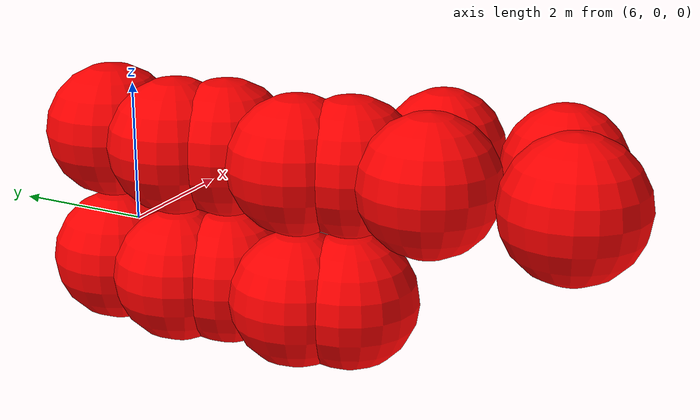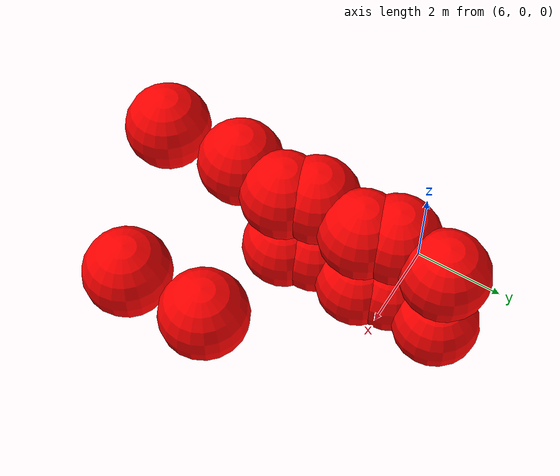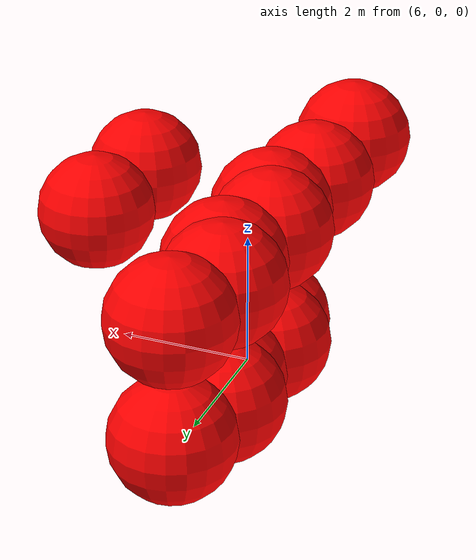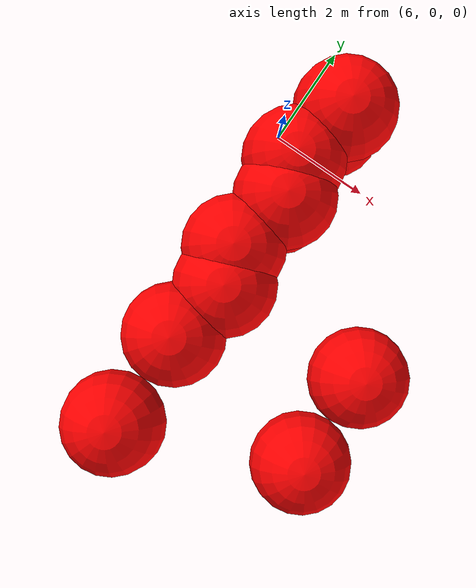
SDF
<sdf version="1.8">
 <world name="3d_world">
  <model name="obstacle_1" canonical_link="obstacle">
   <static>true</static>
   <pose relative_to="world">6.80 -3.04 -1.00 0 0 0</pose>
   <link name="obstacle">
    <pose relative_to="__model__">0.0 0 0.0 0 0 0</pose>
    <visual name="visual">
     <geometry><sphere><radius>1.00</radius></sphere></geometry>
     <material>
      <ambient>1.0 0.0 0.0 1</ambient>
      <diffuse>1.0 0.0 0.0 1</diffuse>
      <specular>1.0 0.0 0.0 1</specular>
     </material>
    </visual>
    <collision name="collision"><geometry><sphere><radius>1.00</radius></sphere></geometry></collision>
    <enable_gravity>false</enable_gravity>
   </link>
   <plugin filename="ignition-gazebo-velocity-control-system" name="ignition::gazebo::systems::VelocityControl">
    <initial_linear>0.00 0.00 0.00</initial_linear>
    <initial_angular>0 0 0</initial_angular>
   </plugin>
   <plugin filename="ignition-gazebo-odometry-publisher-system" name="ignition::gazebo::systems::OdometryPublisher">
    <dimensions>3</dimensions>
   </plugin>
  </model>
  <model name="obstacle_2" canonical_link="obstacle">
   <static>true</static>
   <pose relative_to="world">6.80 -1.04 -1.00 0 0 0</pose>
   <link name="obstacle">
    <pose relative_to="__model__">0.0 0 0.0 0 0 0</pose>
    <visual name="visual">
     <geometry><sphere><radius>1.00</radius></sphere></geometry>
     <material>
      <ambient>1.0 0.0 0.0 1</ambient>
      <diffuse>1.0 0.0 0.0 1</diffuse>
      <specular>1.0 0.0 0.0 1</specular>
     </material>
    </visual>
    <collision name="collision"><geometry><sphere><radius>1.00</radius></sphere></geometry></collision>
    <enable_gravity>false</enable_gravity>
   </link>
   <plugin filename="ignition-gazebo-velocity-control-system" name="ignition::gazebo::systems::VelocityControl">
    <initial_linear>0.00 0.00 0.00</initial_linear>
    <initial_angular>0 0 0</initial_angular>
   </plugin>
   <plugin filename="ignition-gazebo-odometry-publisher-system" name="ignition::gazebo::systems::OdometryPublisher">
    <dimensions>3</dimensions>
   </plugin>
  </model>
  <model name="obstacle_3" canonical_link="obstacle">
   <static>true</static>
   <pose relative_to="world">6.80 0.96 -1.00 0 0 0</pose>
   <link name="obstacle">
    <pose relative_to="__model__">0.0 0 0.0 0 0 0</pose>
    <visual name="visual">
     <geometry><sphere><radius>1.00</radius></sphere></geometry>
     <material>
      <ambient>1.0 0.0 0.0 1</ambient>
      <diffuse>1.0 0.0 0.0 1</diffuse>
      <specular>1.0 0.0 0.0 1</specular>
     </material>
    </visual>
    <collision name="collision"><geometry><sphere><radius>1.00</radius></sphere></geometry></collision>
    <enable_gravity>false</enable_gravity>
   </link>
   <plugin filename="ignition-gazebo-velocity-control-system" name="ignition::gazebo::systems::VelocityControl">
    <initial_linear>0.00 0.00 0.00</initial_linear>
    <initial_angular>0 0 0</initial_angular>
   </plugin>
   <plugin filename="ignition-gazebo-odometry-publisher-system" name="ignition::gazebo::systems::OdometryPublisher">
    <dimensions>3</dimensions>
   </plugin>
  </model>
  <model name="obstacle_4" canonical_link="obstacle">
   <static>true</static>
   <pose relative_to="world">6.80 -3.04 1.00 0 0 0</pose>
   <link name="obstacle">
    <pose relative_to="__model__">0.0 0 0.0 0 0 0</pose>
    <visual name="visual">
     <geometry><sphere><radius>1.00</radius></sphere></geometry>
     <material>
      <ambient>1.0 0.0 0.0 1</ambient>
      <diffuse>1.0 0.0 0.0 1</diffuse>
      <specular>1.0 0.0 0.0 1</specular>
     </material>
    </visual>
    <collision name="collision"><geometry><sphere><radius>1.00</radius></sphere></geometry></collision>
    <enable_gravity>false</enable_gravity>
   </link>
   <plugin filename="ignition-gazebo-velocity-control-system" name="ignition::gazebo::systems::VelocityControl">
    <initial_linear>0.00 0.00 0.00</initial_linear>
    <initial_angular>0 0 0</initial_angular>
   </plugin>
   <plugin filename="ignition-gazebo-odometry-publisher-system" name="ignition::gazebo::systems::OdometryPublisher">
    <dimensions>3</dimensions>
   </plugin>
  </model>
  <model name="obstacle_5" canonical_link="obstacle">
   <static>true</static>
   <pose relative_to="world">6.80 -1.04 1.00 0 0 0</pose>
   <link name="obstacle">
    <pose relative_to="__model__">0.0 0 0.0 0 0 0</pose>
    <visual name="visual">
     <geometry><sphere><radius>1.00</radius></sphere></geometry>
     <material>
      <ambient>1.0 0.0 0.0 1</ambient>
      <diffuse>1.0 0.0 0.0 1</diffuse>
      <specular>1.0 0.0 0.0 1</specular>
     </material>
    </visual>
    <collision name="collision"><geometry><sphere><radius>1.00</radius></sphere></geometry></collision>
    <enable_gravity>false</enable_gravity>
   </link>
   <plugin filename="ignition-gazebo-velocity-control-system" name="ignition::gazebo::systems::VelocityControl">
    <initial_linear>0.00 0.00 0.00</initial_linear>
    <initial_angular>0 0 0</initial_angular>
   </plugin>
   <plugin filename="ignition-gazebo-odometry-publisher-system" name="ignition::gazebo::systems::OdometryPublisher">
    <dimensions>3</dimensions>
   </plugin>
  </model>
  <model name="obstacle_6" canonical_link="obstacle">
   <static>true</static>
   <pose relative_to="world">6.80 0.96 1.00 0 0 0</pose>
   <link name="obstacle">
    <pose relative_to="__model__">0.0 0 0.0 0 0 0</pose>
    <visual name="visual">
     <geometry><sphere><radius>1.00</radius></sphere></geometry>
     <material>
      <ambient>1.0 0.0 0.0 1</ambient>
      <diffuse>1.0 0.0 0.0 1</diffuse>
      <specular>1.0 0.0 0.0 1</specular>
     </material>
    </visual>
    <collision name="collision"><geometry><sphere><radius>1.00</radius></sphere></geometry></collision>
    <enable_gravity>false</enable_gravity>
   </link>
   <plugin filename="ignition-gazebo-velocity-control-system" name="ignition::gazebo::systems::VelocityControl">
    <initial_linear>0.00 0.00 0.00</initial_linear>
    <initial_angular>0 0 0</initial_angular>
   </plugin>
   <plugin filename="ignition-gazebo-odometry-publisher-system" name="ignition::gazebo::systems::OdometryPublisher">
    <dimensions>3</dimensions>
   </plugin>
  </model>
  <model name="obstacle_9" canonical_link="obstacle">
   <static>true</static>
   <pose relative_to="world">6.53 -2.34 -1.00 0 0 0</pose>
   <link name="obstacle">
    <pose relative_to="__model__">0.0 0 0.0 0 0 0</pose>
    <visual name="visual">
     <geometry><sphere><radius>1.00</radius></sphere></geometry>
     <material>
      <ambient>1.0 0.0 0.0 1</ambient>
      <diffuse>1.0 0.0 0.0 1</diffuse>
      <specular>1.0 0.0 0.0 1</specular>
     </material>
    </visual>
    <collision name="collision"><geometry><sphere><radius>1.00</radius></sphere></geometry></collision>
    <enable_gravity>false</enable_gravity>
   </link>
   <plugin filename="ignition-gazebo-velocity-control-system" name="ignition::gazebo::systems::VelocityControl">
    <initial_linear>0.00 0.00 0.00</initial_linear>
    <initial_angular>0 0 0</initial_angular>
   </plugin>
   <plugin filename="ignition-gazebo-odometry-publisher-system" name="ignition::gazebo::systems::OdometryPublisher">
    <dimensions>3</dimensions>
   </plugin>
  </model>
  <model name="obstacle_10" canonical_link="obstacle">
   <static>true</static>
   <pose relative_to="world">6.53 -0.34 -1.00 0 0 0</pose>
   <link name="obstacle">
    <pose relative_to="__model__">0.0 0 0.0 0 0 0</pose>
    <visual name="visual">
     <geometry><sphere><radius>1.00</radius></sphere></geometry>
     <material>
      <ambient>1.0 0.0 0.0 1</ambient>
      <diffuse>1.0 0.0 0.0 1</diffuse>
      <specular>1.0 0.0 0.0 1</specular>
     </material>
    </visual>
    <collision name="collision"><geometry><sphere><radius>1.00</radius></sphere></geometry></collision>
    <enable_gravity>false</enable_gravity>
   </link>
   <plugin filename="ignition-gazebo-velocity-control-system" name="ignition::gazebo::systems::VelocityControl">
    <initial_linear>0.00 0.00 0.00</initial_linear>
    <initial_angular>0 0 0</initial_angular>
   </plugin>
   <plugin filename="ignition-gazebo-odometry-publisher-system" name="ignition::gazebo::systems::OdometryPublisher">
    <dimensions>3</dimensions>
   </plugin>
  </model>
  <model name="obstacle_11" canonical_link="obstacle">
   <static>true</static>
   <pose relative_to="world">6.53 -6.34 1.00 0 0 0</pose>
   <link name="obstacle">
    <pose relative_to="__model__">0.0 0 0.0 0 0 0</pose>
    <visual name="visual">
     <geometry><sphere><radius>1.00</radius></sphere></geometry>
     <material>
      <ambient>1.0 0.0 0.0 1</ambient>
      <diffuse>1.0 0.0 0.0 1</diffuse>
      <specular>1.0 0.0 0.0 1</specular>
     </material>
    </visual>
    <collision name="collision"><geometry><sphere><radius>1.00</radius></sphere></geometry></collision>
    <enable_gravity>false</enable_gravity>
   </link>
   <plugin filename="ignition-gazebo-velocity-control-system" name="ignition::gazebo::systems::VelocityControl">
    <initial_linear>0.00 0.00 0.00</initial_linear>
    <initial_angular>0 0 0</initial_angular>
   </plugin>
   <plugin filename="ignition-gazebo-odometry-publisher-system" name="ignition::gazebo::systems::OdometryPublisher">
    <dimensions>3</dimensions>
   </plugin>
  </model>
  <model name="obstacle_12" canonical_link="obstacle">
   <static>true</static>
   <pose relative_to="world">6.53 -4.34 1.00 0 0 0</pose>
   <link name="obstacle">
    <pose relative_to="__model__">0.0 0 0.0 0 0 0</pose>
    <visual name="visual">
     <geometry><sphere><radius>1.00</radius></sphere></geometry>
     <material>
      <ambient>1.0 0.0 0.0 1</ambient>
      <diffuse>1.0 0.0 0.0 1</diffuse>
      <specular>1.0 0.0 0.0 1</specular>
     </material>
    </visual>
    <collision name="collision"><geometry><sphere><radius>1.00</radius></sphere></geometry></collision>
    <enable_gravity>false</enable_gravity>
   </link>
   <plugin filename="ignition-gazebo-velocity-control-system" name="ignition::gazebo::systems::VelocityControl">
    <initial_linear>0.00 0.00 0.00</initial_linear>
    <initial_angular>0 0 0</initial_angular>
   </plugin>
   <plugin filename="ignition-gazebo-odometry-publisher-system" name="ignition::gazebo::systems::OdometryPublisher">
    <dimensions>3</dimensions>
   </plugin>
  </model>
  <model name="obstacle_13" canonical_link="obstacle">
   <static>true</static>
   <pose relative_to="world">6.53 -2.34 1.00 0 0 0</pose>
   <link name="obstacle">
    <pose relative_to="__model__">0.0 0 0.0 0 0 0</pose>
    <visual name="visual">
     <geometry><sphere><radius>1.00</radius></sphere></geometry>
     <material>
      <ambient>1.0 0.0 0.0 1</ambient>
      <diffuse>1.0 0.0 0.0 1</diffuse>
      <specular>1.0 0.0 0.0 1</specular>
     </material>
    </visual>
    <collision name="collision"><geometry><sphere><radius>1.00</radius></sphere></geometry></collision>
    <enable_gravity>false</enable_gravity>
   </link>
   <plugin filename="ignition-gazebo-velocity-control-system" name="ignition::gazebo::systems::VelocityControl">
    <initial_linear>0.00 0.00 0.00</initial_linear>
    <initial_angular>0 0 0</initial_angular>
   </plugin>
   <plugin filename="ignition-gazebo-odometry-publisher-system" name="ignition::gazebo::systems::OdometryPublisher">
    <dimensions>3</dimensions>
   </plugin>
  </model>
  <model name="obstacle_14" canonical_link="obstacle">
   <static>true</static>
   <pose relative_to="world">6.53 -0.34 1.00 0 0 0</pose>
   <link name="obstacle">
    <pose relative_to="__model__">0.0 0 0.0 0 0 0</pose>
    <visual name="visual">
     <geometry><sphere><radius>1.00</radius></sphere></geometry>
     <material>
      <ambient>1.0 0.0 0.0 1</ambient>
      <diffuse>1.0 0.0 0.0 1</diffuse>
      <specular>1.0 0.0 0.0 1</specular>
     </material>
    </visual>
    <collision name="collision"><geometry><sphere><radius>1.00</radius></sphere></geometry></collision>
    <enable_gravity>false</enable_gravity>
   </link>
   <plugin filename="ignition-gazebo-velocity-control-system" name="ignition::gazebo::systems::VelocityControl">
    <initial_linear>0.00 0.00 0.00</initial_linear>
    <initial_angular>0 0 0</initial_angular>
   </plugin>
   <plugin filename="ignition-gazebo-odometry-publisher-system" name="ignition::gazebo::systems::OdometryPublisher">
    <dimensions>3</dimensions>
   </plugin>
  </model>
  <model name="obstacle_23" canonical_link="obstacle">
   <static>false</static>
   <pose relative_to="world">9.96 -5.07 0.38 0 0 0</pose>
   <link name="obstacle">
    <pose relative_to="__model__">0.0 0 0.0 0 0 0</pose>
    <visual name="visual">
     <geometry><sphere><radius>1.00</radius></sphere></geometry>
     <material>
      <ambient>1.0 0.0 0.0 1</ambient>
      <diffuse>1.0 0.0 0.0 1</diffuse>
      <specular>1.0 0.0 0.0 1</specular>
     </material>
    </visual>
    <collision name="collision"><geometry><sphere><radius>1.00</radius></sphere></geometry></collision>
    <enable_gravity>false</enable_gravity>
   </link>
   <plugin filename="ignition-gazebo-velocity-control-system" name="ignition::gazebo::systems::VelocityControl">
    <initial_linear>0.00 1.99 -0.10</initial_linear>
    <initial_angular>0 0 0</initial_angular>
   </plugin>
   <plugin filename="ignition-gazebo-odometry-publisher-system" name="ignition::gazebo::systems::OdometryPublisher">
    <dimensions>3</dimensions>
   </plugin>
  </model>
  <model name="obstacle_24" canonical_link="obstacle">
   <static>false</static>
   <pose relative_to="world">9.96 -3.07 0.38 0 0 0</pose>
   <link name="obstacle">
    <pose relative_to="__model__">0.0 0 0.0 0 0 0</pose>
    <visual name="visual">
     <geometry><sphere><radius>1.00</radius></sphere></geometry>
     <material>
      <ambient>1.0 0.0 0.0 1</ambient>
      <diffuse>1.0 0.0 0.0 1</diffuse>
      <specular>1.0 0.0 0.0 1</specular>
     </material>
    </visual>
    <collision name="collision"><geometry><sphere><radius>1.00</radius></sphere></geometry></collision>
    <enable_gravity>false</enable_gravity>
   </link>
   <plugin filename="ignition-gazebo-velocity-control-system" name="ignition::gazebo::systems::VelocityControl">
    <initial_linear>0.00 1.99 -0.10</initial_linear>
    <initial_angular>0 0 0</initial_angular>
   </plugin>
   <plugin filename="ignition-gazebo-odometry-publisher-system" name="ignition::gazebo::systems::OdometryPublisher">
    <dimensions>3</dimensions>
   </plugin>
  </model>
 </world>
</sdf>
